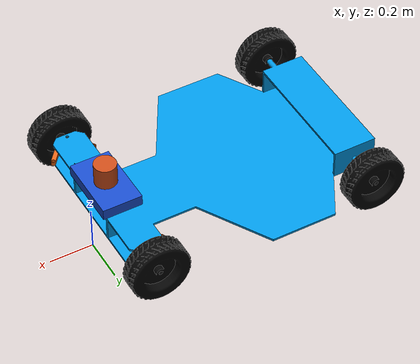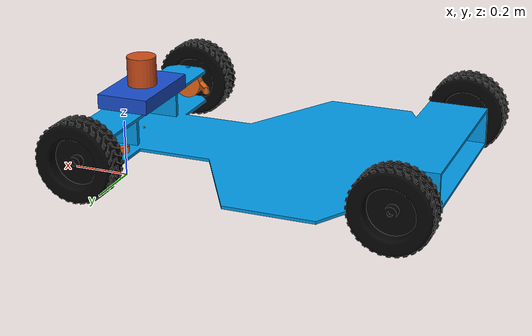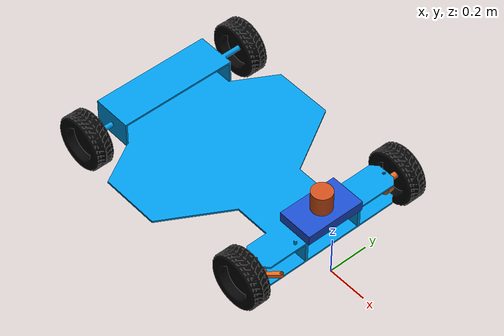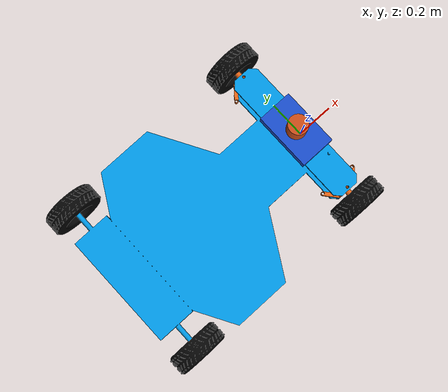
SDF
<sdf version="1.7">
 <world name="world_demo">
  <physics name="lms" type="ignored">
   <max_step_size>0.001</max_step_size>
   <real_time_factor>1.0</real_time_factor>
  </physics>
  <plugin filename="gz-sim-physics-system" name="gz::sim::systems::Physics"/>
  <plugin filename="gz-sim-user-commands-system" name="gz::sim::systems::UserCommands"/>
  <plugin filename="gz-sim-scene-broadcaster-system" name="gz::sim::systems::SceneBroadcaster"/>
  <plugin filename="gz-sim-sensors-system" name="gz::sim::systems::Sensors">
   <render_engine>ogre2</render_engine>
  </plugin>
  <plugin filename="gz-sim-imu-system" name="gz::sim::systems::Imu"/>
  <light type="directional" name="sun">
   <pose>0 0 10 0 0 0</pose>
   <diffuse>0.8 0.8 0.8 1</diffuse>
   <specular>0.2 0.2 0.2 1</specular>
   <attenuation>
    <range>1000</range>
    <constant>0.9</constant>
    <linear>0.01</linear>
    <quadratic>0.001</quadratic>
   </attenuation>
   <direction>-0.5 0.1 -0.9</direction>
  </light>
  <model name="ground_plane">
   <pose>0 0 0.1 0 0 0</pose>
   <static>true</static>
   <link name="link">
    <collision name="collision">
     <geometry><plane><normal>0 0 1</normal></plane></geometry>
     <surface>
      <friction>
       <ode><mu>50</mu></ode>
       <bullet><friction>1</friction><rolling_friction>0.1</rolling_friction></bullet>
      </friction>
     </surface>
    </collision>
   </link>
  </model>
  <include><uri>model://rc_car</uri><pose>0 0 0.1 0 0 0</pose></include>
 </world>
</sdf>

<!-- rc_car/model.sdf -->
<sdf version='1.7'>
  <model name='rc_car'>

    <link name="base_footprint">
    </link>
    <link name='base_link'>
      <must_be_base_link>true</must_be_base_link>
      <inertial>
        <pose>-5.5136999999999997e-05 0.64776999999999996 0.10824 0 0 0</pose>
        <mass>11.858000000000001</mass>
        <inertia>
          <ixx>1.8393999999999999</ixx>
          <ixy>-0.00040467999999999998</ixy>
          <ixz>6.3267000000000003e-05</ixz>
          <iyy>0.63368000000000002</iyy>
          <iyz>-0.0045383999999999997</iyz>
          <izz>2.4211999999999998</izz>
        </inertia>
      </inertial>
      <collision name='chasis_collision'>
        <pose>0 0 0 0 0 1.570796</pose>
        <geometry>
          <mesh>
            <scale>1 1 1</scale>
            <uri>meshes/base_link.STL</uri>
          </mesh>
        </geometry>
      </collision>
      <visual name='chasis_visual'>
        <pose>0 0 0 0 0 1.570796</pose>
        <geometry>
          <mesh>
            <scale>1 1 1</scale>
            <uri>meshes/base_link.STL</uri>
          </mesh>
        </geometry>
        <material>
          <diffuse>0.0 0.6 0.9 1</diffuse>          <!-- Bright cyan -->
          <ambient>0.0 0.2 0.3 1</ambient>          <!-- Dimmer version to give depth -->
          <specular>0.8 0.9 1.0 1</specular>        <!-- Strong light response -->
          <emissive>0.02 0.05 0.1 1</emissive>
        </material>
      </visual>
    </link>

    <link name="camera_link">
      <pose relative_to='camera_joint'>0 0 0.025 0 0 0</pose>
      <sensor name='camera_sensor' type='camera'>
        <pose>0.09 0 0 0 0 0</pose>
        <camera>
          <horizontal_fov>1.047</horizontal_fov>
          <image>
            <width>640</width>
            <height>480</height>
            <format>R8G8B8</format>
          </image>
          <clip>
            <near>0.01</near>
            <far>100</far>
          </clip>
        </camera>
        <always_on>1</always_on>
        <update_rate>30</update_rate>
        <visualize>true</visualize>
      </sensor>
      <inertial>
        <mass>0.1</mass>
        <inertia>
          <ixx>0.000166667</ixx>
          <iyy>0.000166667</iyy>
          <izz>0.000166667</izz>
        </inertia>
      </inertial>
      <collision name="collision">
        <geometry>
          <box>
            <size>0.18 0.3 0.05</size>
          </box>
        </geometry>
      </collision>
      <visual name="visual">
        <geometry>
          <box>
            <size>0.18 0.3 0.05</size>
          </box>
        </geometry>
        <material>
          <diffuse>0.1 0.3 0.8 1</diffuse>         Metallic blue
          <ambient>0.1 0.1 0.2 1</ambient>
          <specular>0.5 0.5 0.5 1</specular>       Reflective
          <emissive>0 0 0 1</emissive>
        </material>
      </visual>
    </link>
    <link name='lidar_link'>
      <pose relative_to='lidar_joint'>0 0 0.05 0 0 0</pose>
      <sensor name='gpu_lidar' type='gpu_lidar'>"
        <pose>0 0 0 0 0 0</pose>
        <gz_frame_id>lidar_link</gz_frame_id>
        <update_rate>10</update_rate>
        <ray>
            <scan>
                <horizontal>
                    <samples>640</samples>
                    <resolution>1</resolution>
                    <min_angle>-3.141592653589793</min_angle>
                    <max_angle>3.141592653589793</max_angle>
                </horizontal>
                <vertical>
                    <samples>1</samples>
                    <resolution>0.01</resolution>
                    <min_angle>0</min_angle>
                    <max_angle>0</max_angle>
                </vertical>
            </scan>
            <range>
                <min>0.08</min>
                <max>10.0</max>
                <resolution>0.01</resolution>
            </range>
            <noise>
              <type>gaussian</type>
              <mean>0.0</mean>
              <stddev>0.001</stddev>
            </noise>
        </ray>
        <always_on>1</always_on>
        <visualize>true</visualize>
      </sensor>
      <inertial>
        <mass>0.1</mass>
        <inertia>
          <ixx>0.000145833</ixx>
          <iyy>0.000145833</iyy>
          <izz>0.000125</izz>
        </inertia>
      </inertial>
      <collision name="collision">
        <geometry>
          <cylinder>
            <radius>0.05</radius>
            <length>0.1</length>
          </cylinder>
        </geometry>
      </collision>
      <visual name="visual">
        <geometry>
          <cylinder>
            <radius>0.05</radius>
            <length>0.1</length>
          </cylinder>
        </geometry>
        <material>
          <diffuse>0.8 0.3 0.1 1</diffuse>
          <ambient>0.2 0.1 0.05 1</ambient>
          <specular>0.5 0.5 0.5 1</specular>
          <emissive>0 0 0 1</emissive>
        </material>
      </visual>
    </link>

    <link name='imu_link'>
      <pose relative_to='imu_joint'>0 0 0.0025 0 0 0</pose>
      <inertial>
        <mass>0.05</mass>
        <inertia>
          <ixx>2.08333e-07</ixx>
          <iyy>2.08333e-07</iyy>
          <izz>2.08333e-07</izz>
        </inertia>
      </inertial>
      <collision name="collision">
        <geometry>
          <box>
            <size>0.005 0.005 0.005</size>
          </box>
        </geometry>
      </collision>
      <visual name="visual">
        <geometry>
          <box>
            <size>0.005 0.005 0.005</size>
          </box>
        </geometry>
        <material>
          <diffuse>0.9 0.9 0.1 1</diffuse>
          <ambient>0.3 0.3 0.05 1</ambient>
          <specular>0.5 0.5 0.5 1</specular>
          <emissive>0 0 0 1</emissive>
        </material>
      </visual>
      <sensor name='imu_sensor' type='imu'>
        <always_on>1</always_on>
        <update_rate>100</update_rate>
        <visualize>true</visualize>
        <gz_frame_id>imu_link</gz_frame_id>
        <imu>
          <angular_velocity>
            <x>
              <noise type="gaussian">
                <mean>0.0</mean>
                <stddev>2e-4</stddev>
                <bias_mean>0.0000075</bias_mean>
                <bias_stddev>0.0000008</bias_stddev>
              </noise>
            </x>
            <y>
              <noise type="gaussian">
                <mean>0.0</mean>
                <stddev>2e-4</stddev>
                <bias_mean>0.0000075</bias_mean>
                <bias_stddev>0.0000008</bias_stddev>
              </noise>
            </y>
            <z>
              <noise type="gaussian">
                <mean>0.0</mean>
                <stddev>2e-4</stddev>
                <bias_mean>0.0000075</bias_mean>
                <bias_stddev>0.0000008</bias_stddev>
              </noise>
            </z>
          </angular_velocity>
          <linear_acceleration>
            <x>
              <noise type="gaussian">
                <mean>0.0</mean>
                <stddev>1.7e-2</stddev>
                <bias_mean>0.1</bias_mean>
                <bias_stddev>0.001</bias_stddev>
              </noise>
            </x>
            <y>
              <noise type="gaussian">
                <mean>0.0</mean>
                <stddev>1.7e-2</stddev>
                <bias_mean>0.1</bias_mean>
                <bias_stddev>0.001</bias_stddev>
              </noise>
            </y>
            <z>
              <noise type="gaussian">
                <mean>0.0</mean>
                <stddev>1.7e-2</stddev>
                <bias_mean>0.1</bias_mean>
                <bias_stddev>0.001</bias_stddev>
              </noise>
            </z>
          </linear_acceleration>
        </imu>
      </sensor>
    </link>
    <link name='wheel_rr'>
      <pose relative_to='j3'>0 0 0 0 0 0</pose>
      <inertial>
        <pose>-5.3671999999999998e-10 0.00013823000000000001 3.7974000000000002e-10 0 0 0</pose>
        <mass>3.6930999999999998</mass>
        <inertia>
          <ixx>0.023123000000000001</ixx>
          <ixy>-4.0982000000000001e-11</ixy>
          <ixz>-2.9877999999999999e-12</ixz>
          <iyy>0.040842999999999997</iyy>
          <iyz>-1.0660e-11</iyz>
          <izz>0.023123000000000001</izz>
        </inertia>
      </inertial>
      <collision name='wheel_rr_collision'>
        <pose>0 0 0 1.570796 0 0</pose>
        <geometry>
          <mesh>
            <scale>1 1 1</scale>
            <uri>meshes/wheel_rr.STL</uri>
          </mesh>
        </geometry>
        <surface>
            <friction>
              <ode>
                <mu>0.5</mu>
                <mu2>1.0</mu2>
                <fdir1>0 0 1</fdir1>
              </ode>
              <bullet>
                <friction>0.5</friction>
                <friction2>1</friction2>
                <rolling_friction>0.5</rolling_friction>
              </bullet>
            </friction>
          </surface>
      </collision>
      <visual name='wheel_rr_visual'>
        <pose>0 0 0 1.570796 0 0</pose>
        <geometry>
          <mesh>
            <scale>1 1 1</scale>
            <uri>meshes/wheel_rr.STL</uri>
          </mesh>
        </geometry>
        <material>
          <diffuse>0.02 0.02 0.02 1</diffuse>     <!-- Very dark gray, nearly black -->
          <ambient>0.1 0.1 0.1 1</ambient>
          <specular>0.1 0.1 0.1 1</specular>
          <emissive>0 0 0 1</emissive>
        </material>
      </visual>
    </link>

    <link name='wheel_rl'>
      <pose relative_to='j4'>0 0 0 0 0 0</pose>
      <inertial>
        <pose>1.0954e-10 0.00013823000000000001 6.4829000000000004e-10 0 0 0</pose>
        <mass>3.6930999999999998</mass>
        <inertia>
          <ixx>0.023123000000000001</ixx>
          <ixy>-2.7371e-11</ixy>
          <ixz>-3.6884000000000003e-12</ixz>
          <iyy>0.040842999999999997</iyy>
          <iyz>3.2310000000000003e-11</iyz>
          <izz>0.023123000000000001</izz>
        </inertia>
      </inertial>
      <collision name='wheel_rl_collision'>
        <pose>0 0 0 1.570796 0 0</pose>
        <geometry>
          <mesh>
            <scale>1 1 1</scale>
            <uri>meshes/wheel_rl.STL</uri>
          </mesh>
        </geometry>
        <surface>
            <friction>
              <ode>
                <mu>0.5</mu>
                <mu2>1.0</mu2>
                <fdir1>0 0 1</fdir1>
              </ode>
              <bullet>
                <friction>0.5</friction>
                <friction2>1</friction2>
                <rolling_friction>0.5</rolling_friction>
              </bullet>
            </friction>
          </surface>
      </collision>
      <visual name='wheel_rl_visual'>
        <pose>0 0 0 1.570796 0 0</pose>
        <geometry>
          <mesh>
            <scale>1 1 1</scale>
            <uri>meshes/wheel_rl.STL</uri>
          </mesh>
        </geometry>
        <material>
          <diffuse>0.02 0.02 0.02 1</diffuse>     <!-- Very dark gray, nearly black -->
          <ambient>0.1 0.1 0.1 1</ambient>
          <specular>0.1 0.1 0.1 1</specular>
          <emissive>0 0 0 1</emissive>
        </material>
      </visual>
    </link>

    <link name='fn_cn1'>
      <pose relative_to='j5'>0 0 0 0 0 0</pose>
      <inertial>
        <pose>-0.0069088999999999999 0.0041269000000000002 5.0933000000000004e-10 0 0 0</pose>
        <mass>0.28769</mass>
        <inertia>
          <ixx>0.00027454999999999998</ixx>
          <ixy>-6.6557000000000007e-05</ixy>
          <ixz>-1.8201000000000001e-11</ixz>
          <iyy>0.00042178000000000002</iyy>
          <iyz>2.1946999999999999e-12</iyz>
          <izz>0.00042441000000000001</izz>
        </inertia>
      </inertial>
      <collision name='fn_cn1_collision'>
        <pose>0 0 0 0 0 1.570796</pose>
        <geometry>
          <mesh>
            <scale>1 1 1</scale>
            <uri>meshes/fn_cn1.STL</uri>
          </mesh>
        </geometry>
      </collision>
      <visual name='fn_cn1_visual'>
        <pose>0 0 0 0 0 1.570796</pose>
        <geometry>
          <mesh>
            <scale>1 1 1</scale>
            <uri>meshes/fn_cn1.STL</uri>
          </mesh>
        </geometry>
        <material>
          <diffuse>0.9 0.4 0.1 1</diffuse>
          <ambient>0.3 0.1 0.05 1</ambient>
          <specular>0.4 0.2 0.1 1</specular>
          <emissive>0 0 0 1</emissive>
        </material>

      </visual>
    </link>

    <link name='wheel_fl'>
      <pose relative_to='j1'>0 0 0 0 0 0</pose>
      <inertial>
        <pose>6.4962999999999996e-10 0.00013823000000000001 -1.0123e-10 0 0 0</pose>
        <mass>3.6930999999999998</mass>
        <inertia>
          <ixx>0.023123000000000001</ixx>
          <ixy>3.1956999999999999e-11</ixy>
          <ixz>3.8605000000000004e-12</ixz>
          <iyy>0.040842999999999997</iyy>
          <iyz>2.7783e-11</iyz>
          <izz>0.023123000000000001</izz>
        </inertia>
      </inertial>
      <collision name='wheel_fl_collision'>
        <pose>0 0 0 1.570796 0 0</pose>
        <geometry>
          <mesh>
            <scale>1 1 1</scale>
            <uri>meshes/wheel_fl.STL</uri>
          </mesh>
        </geometry>
        <surface>
            <friction>
              <ode>
                <mu>0.5</mu>
                <mu2>1.0</mu2>
                <fdir1>0 0 1</fdir1>
              </ode>
              <bullet>
                <friction>0.5</friction>
                <friction2>1</friction2>
                <rolling_friction>0.1</rolling_friction>
              </bullet>
            </friction>
          </surface>
      </collision>
      <visual name='wheel_fl_visual'>
        <pose>0 0 0 1.570796 0 0</pose>
        <geometry>
          <mesh>
            <scale>1 1 1</scale>
            <uri>meshes/wheel_fl.STL</uri>
          </mesh>
        </geometry>
        <material>
          <diffuse>0.02 0.02 0.02 1</diffuse>     <!-- Very dark gray, nearly black -->
          <ambient>0.1 0.1 0.1 1</ambient>
          <specular>0.1 0.1 0.1 1</specular>
          <emissive>0 0 0 1</emissive>
        </material>
      </visual>
    </link>

    <link name='fn_cn2'>
      <pose relative_to='j6'>0 0 0 0 0 0</pose>
      <inertial>
        <pose>7.3412000000000003e-09 -0.0014796 1.3878e-17 0 0 0</pose>
        <mass>0.31497000000000003</mass>
        <inertia>
          <ixx>0.00030714000000000002</ixx>
          <ixy>-6.0907000000000005e-13</ixy>
          <ixz>1.8005999999999999e-11</ixz>
          <iyy>0.00058657999999999996</iyy>
          <iyz>2.0396000000000001e-21</iyz>
          <izz>0.00061996000000000002</izz>
        </inertia>
      </inertial>
      <collision name='fn_cn2_collision'>
        <pose>0 0 0 0 0 1.570796</pose>
        <geometry>
          <mesh>
            <scale>1 1 1</scale>
            <uri>meshes/fn_cn2.STL</uri>
          </mesh>
        </geometry>
      </collision>
      <visual name='fn_cn2_visual'>
        <pose>0 0 0 0 0 1.570796</pose>
        <geometry>
          <mesh>
            <scale>1 1 1</scale>
            <uri>meshes/fn_cn2.STL</uri>
          </mesh>
        </geometry>
        <material>
          <diffuse>0.9 0.4 0.1 1</diffuse>
          <ambient>0.3 0.1 0.05 1</ambient>
          <specular>0.4 0.2 0.1 1</specular>
          <emissive>0 0 0 1</emissive>
        </material>
      </visual>
    </link>

    <link name='wheel_fr'>
      <pose relative_to='j2'>0 0 0 0 0 0</pose>
      <inertial>
        <pose>7.6549999999999997e-11 0.00013823000000000001 6.5300000000000002e-10 0 0 0</pose>
        <mass>3.6930999999999998</mass>
        <inertia>
          <ixx>0.023123000000000001</ixx>
          <ixy>-2.8973000000000001e-11</ixy>
          <ixz>-4.3548e-12</ixz>
          <iyy>0.040842999999999997</iyy>
          <iyz>3.0881000000000003e-11</iyz>
          <izz>0.023123000000000001</izz>
        </inertia>
      </inertial>
      <collision name='wheel_fr_collision'>
        <pose>0 0 0 1.570796 0 0</pose>
        <geometry>
          <mesh>
            <scale>1 1 1</scale>
            <uri>meshes/wheel_fr.STL</uri>
          </mesh>
        </geometry>
        <surface>
            <friction>
              <ode>
                <mu>0.5</mu>
                <mu2>1.0</mu2>
                <fdir1>0 0 1</fdir1>
              </ode>
              <bullet>
                <friction>0.5</friction>
                <friction2>1</friction2>
                <rolling_friction>0.1</rolling_friction>
              </bullet>
            </friction>
          </surface>
      </collision>
      <visual name='wheel_fr_visual'>
        <pose>0 0 0 1.570796 0 0</pose>
        <geometry>
          <mesh>
            <scale>1 1 1</scale>
            <uri>meshes/wheel_fr.STL</uri>
          </mesh>
        </geometry>
        <material>
          <diffuse>0.02 0.02 0.02 1</diffuse>     <!-- Very dark gray, nearly black -->
          <ambient>0.1 0.1 0.1 1</ambient>
          <specular>0.1 0.1 0.1 1</specular>
          <emissive>0 0 0 1</emissive>
        </material>
      </visual>
    </link>

    <joint name='j1' type='revolute'>
      <pose relative_to='fn_cn1'>0 0.079999902078156201 0 0 0 0</pose>
      <parent>fn_cn1</parent>
      <child>wheel_fl</child>
      <axis>
        <xyz>0 1 0</xyz>
        <limit>
          <lower>-1.79769e+308</lower>
          <upper>1.79769e+308</upper>
        </limit>
      </axis>
    </joint>
    <joint name='j2' type='revolute'>
      <pose relative_to='fn_cn2'>0 -0.079999902078156201 0 0 0 0</pose>
      <parent>fn_cn2</parent>
      <child>wheel_fr</child>
      <axis>
        <xyz>0 1 0</xyz>
        <limit>
          <lower>-1.79769e+308</lower>
          <upper>1.79769e+308</upper>
        </limit>
      </axis>
    </joint>
    <joint name='j3' type='revolute'>
      <pose relative_to='base_link'>-1.101 -0.44 0.13500000000000001 0 0 0</pose>
      <parent>base_link</parent>
      <child>wheel_rr</child>
      <axis>
        <xyz>0 1 0</xyz>
        <limit>
          <lower>-1.79769e+308</lower>
          <upper>1.79769e+308</upper>
        </limit>
      </axis>
    </joint>
    <joint name='j4' type='revolute'>
      <pose relative_to='base_link'>-1.101 0.44 0.13500000000000001 0 0 0</pose>
      <parent>base_link</parent>
      <child>wheel_rl</child>
      <axis>
        <xyz>0 1 0</xyz>
        <limit>
          <lower>-1.79769e+308</lower>
          <upper>1.79769e+308</upper>
        </limit>
      </axis>
    </joint>
    <joint name='j5' type='revolute'>
      <pose relative_to='base_link'>-0.074999999999999997 0.35999999999999999 0.13500000000000001 0 0 0</pose>
      <parent>base_link</parent>
      <child>fn_cn1</child>
      <axis>
        <xyz>0 0 1</xyz>
        <limit>
          <lower>-0.52359878</lower>
          <upper>0.52359878</upper>
          <effort>2500.0</effort>
          <velocity>100.0</velocity>
        </limit>
      </axis>
    </joint>
    <joint name='j6' type='revolute'>
      <pose relative_to='base_link'>-0.074999999999999997 -0.35999999999999999 0.13500000000000001 0 0 0</pose>
      <parent>base_link</parent>
      <child>fn_cn2</child>
      <axis>
        <xyz>0 0 1</xyz>
        <limit>
          <lower>-0.52359878</lower>
          <upper>0.52359878</upper>
          <effort>2500.0</effort>
          <velocity>100.0</velocity>
        </limit>
      </axis>
    </joint>
    <joint name='camera_joint' type='fixed'>
      <pose relative_to='base_link'>-0.075 0 0.195 0 0 0</pose>
      <parent>base_link</parent>
      <child>camera_link</child>
    </joint>
    <joint name='lidar_joint' type='fixed'>
      <pose relative_to='camera_link'>0 0 0.025 0 0 0</pose>
      <parent>camera_link</parent>
      <child>lidar_link</child>
    </joint>
    <joint name="imu_joint" type="fixed">
      <pose relative_to="base_link">-0.075 0 0.085 0 0 0</pose>
      <parent>base_link</parent>
      <child>imu_link</child>
    </joint>
    <joint name="base_footprint_joint" type="fixed">
      <parent>base_link</parent>
      <child>base_footprint</child>
    </joint>

    <plugin
        filename="gz-sim-ackermann-steering-system"
        name="gz::sim::systems::AckermannSteering">
        <left_joint>j1</left_joint>
        <left_joint>j4</left_joint>
        <right_joint>j2</right_joint>
        <right_joint>j3</right_joint>
        <left_steering_joint>j5</left_steering_joint>
        <right_steering_joint>j6</right_steering_joint>
        <topic>cmd_vel</topic>
        <steering_limit>0.5</steering_limit>
        <wheel_base>1.03</wheel_base>
        <wheel_separation>0.88</wheel_separation>
        <wheel_radius>0.135</wheel_radius>
        <min_velocity>-100</min_velocity>
        <max_velocity>100</max_velocity>
        <min_acceleration>-30</min_acceleration>
        <max_acceleration>30</max_acceleration>
        <frame_id>odom</frame_id>
        <child_frame_id>base_link</child_frame_id>
      </plugin>
      <plugin
        filename="gz-sim-pose-publisher-system"
        name="gz::sim::systems::PosePublisher">
        <publish_link_pose>true</publish_link_pose>
        <publish_sensor_pose>true</publish_sensor_pose>
        <publish_collision_pose>false</publish_collision_pose>
        <publish_visual_pose>false</publish_visual_pose>
      </plugin>
      <plugin
        filename="gz-sim-joint-state-publisher-system"
        name="gz::sim::systems::JointStatePublisher">
      </plugin>

  </model>
</sdf>
